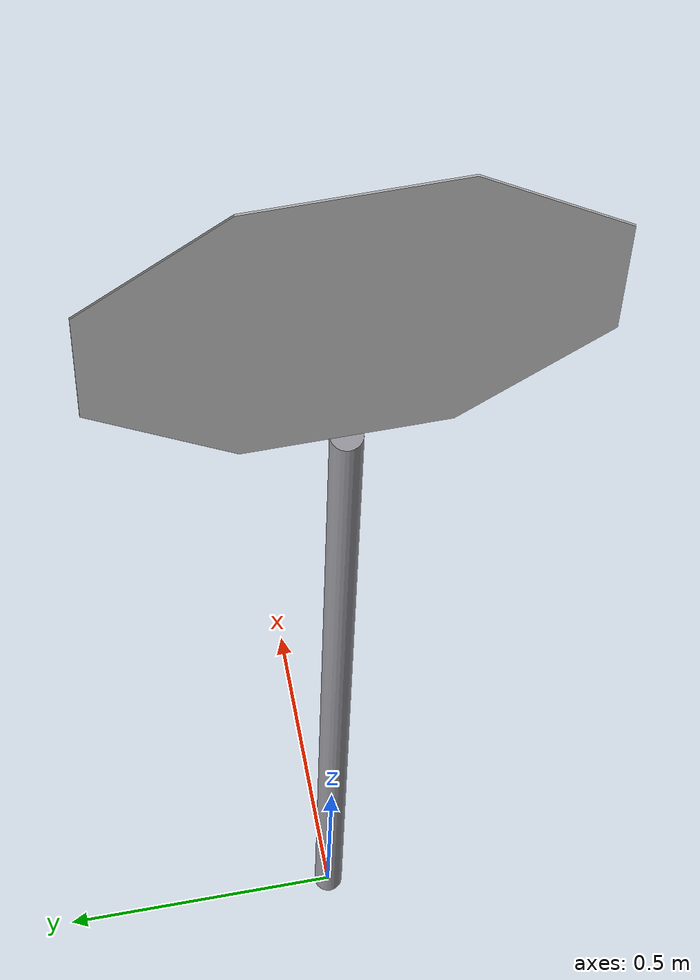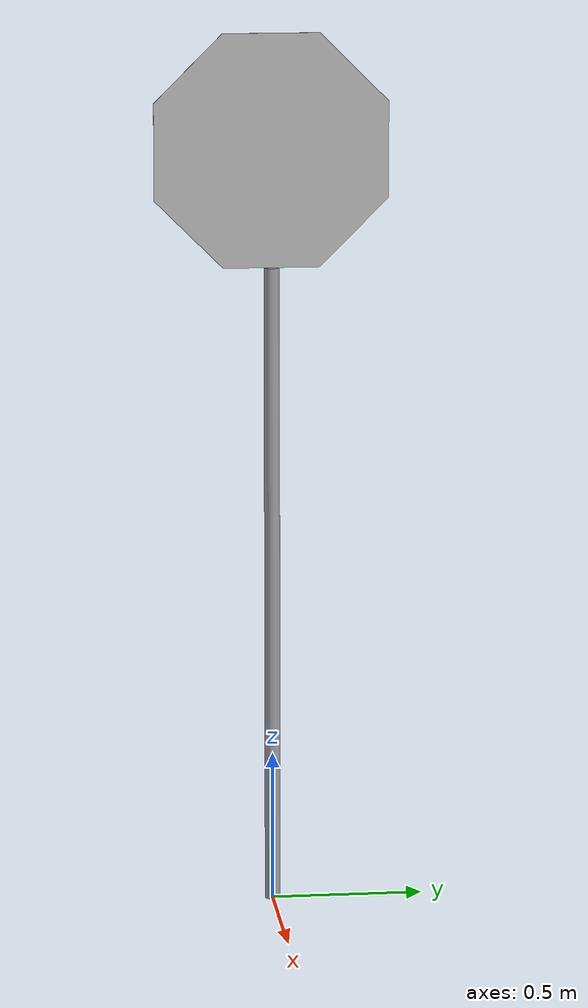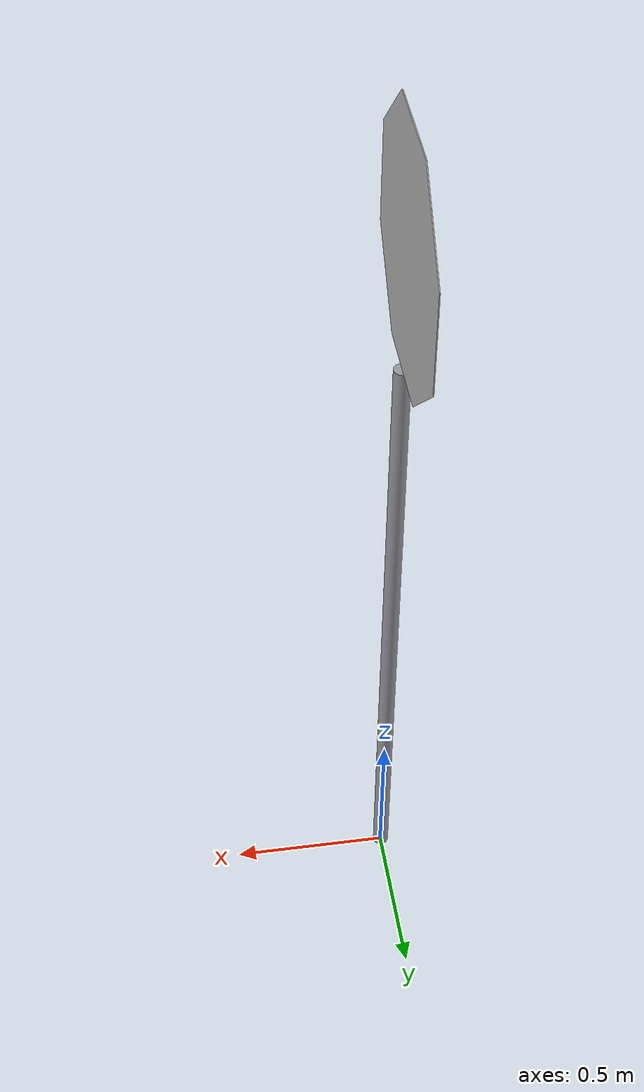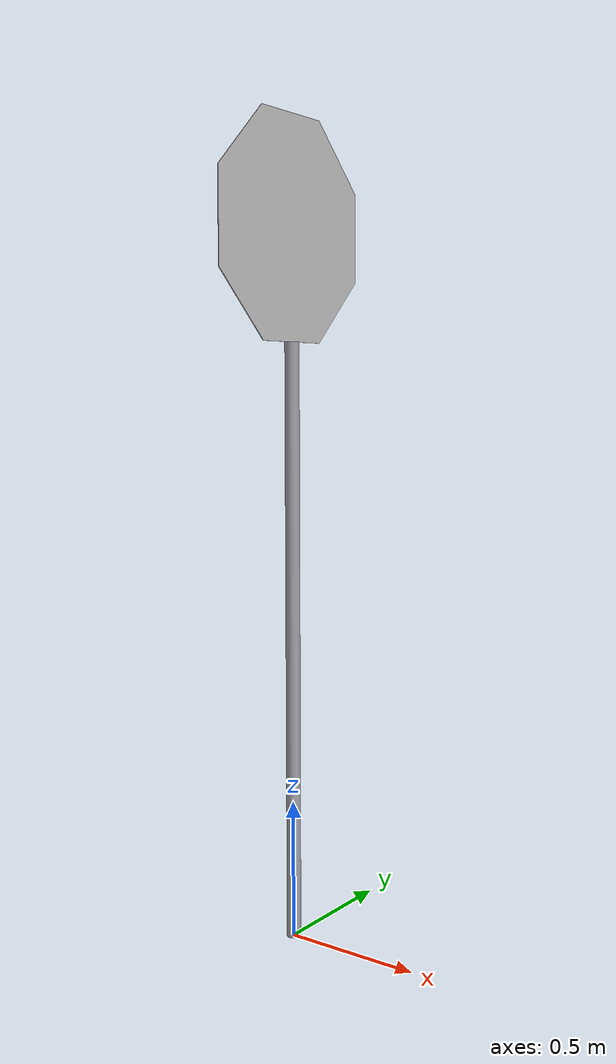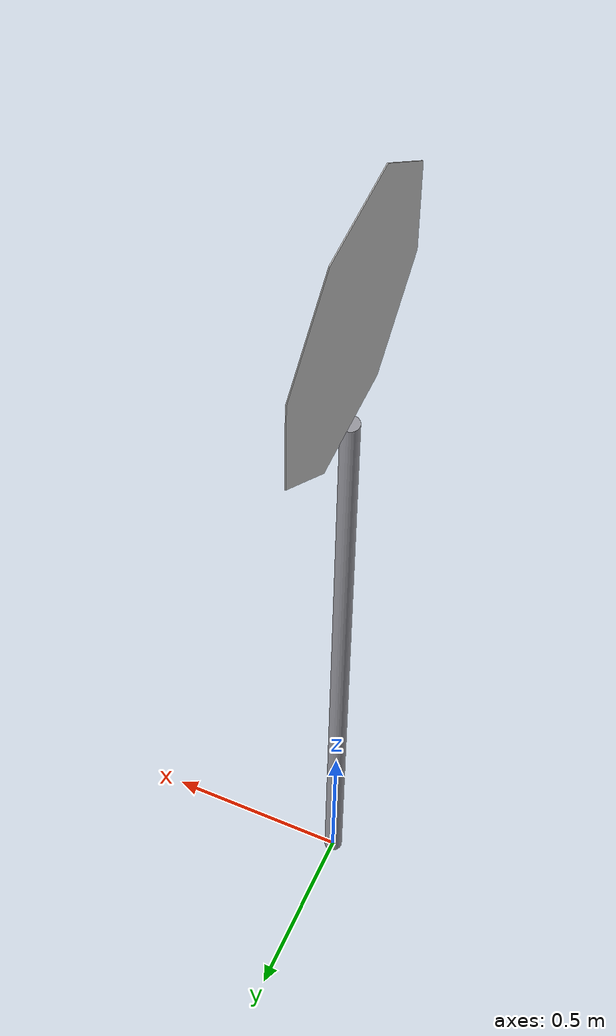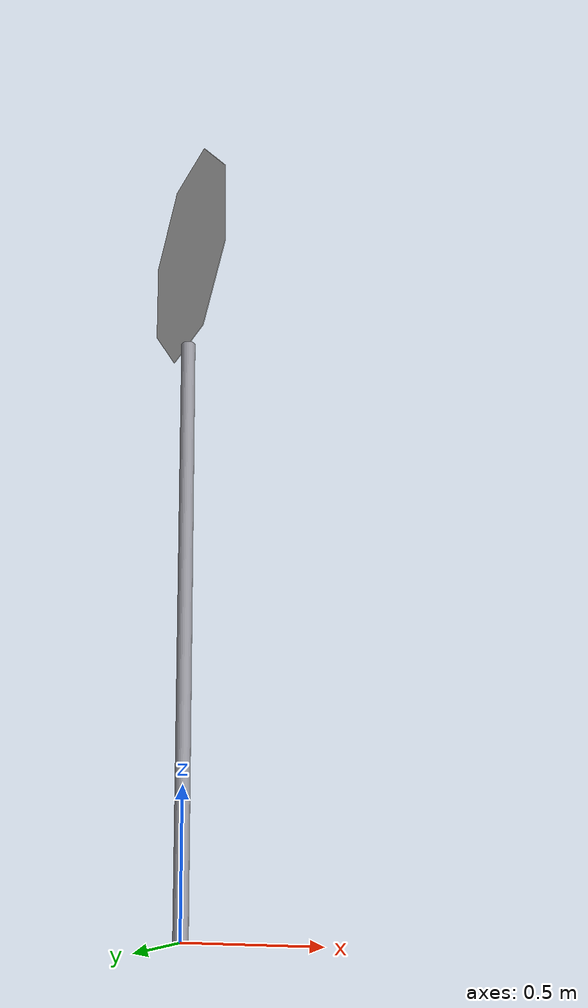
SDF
<?xml version='1.0'?>
<sdf version='1.11'>
  <model name='stop_sign'>
    <pose>0 0 0 0 0 0</pose>
    <static>1</static>

    <link name='base'>

      <!-- Sign panel -->
      <visual name='sign_panel'>
        <!-- Mesh origin is at sign center; elevate to 7 ft pole height + apothem (half flat-to-flat) -->
        <pose>0 0 2.515 0 0 0</pose>
        <geometry>
          <mesh>
            <uri>package://ece5532_gazebo/models/stop_sign/meshes/stop_sign.obj</uri>
            <scale>1 1 1</scale>
          </mesh>
        </geometry>
      </visual>

      <!-- Support post: 2-inch diameter galvanized steel pipe, 7 ft (2.134 m) tall -->
      <visual name='pole'>
        <pose>0 0 1.067 0 0 0</pose>
        <geometry>
          <cylinder>
            <radius>0.0254</radius>
            <length>2.134</length>
          </cylinder>
        </geometry>
        <material>
          <ambient>0.5 0.5 0.52 1</ambient>
          <diffuse>0.6 0.6 0.63 1</diffuse>
          <specular>0.4 0.4 0.4 1</specular>
        </material>
      </visual>

      <!-- Sign collision: box bounding the octagon panel -->
      <!-- Octagon flat-to-flat = 0.762 m (30 in); depth = 0.003 m -->
      <collision name='sign_col'>
        <pose>0 0 2.515 0 0 0</pose>
        <geometry>
          <box>
            <size>0.003 0.762 0.762</size>
          </box>
        </geometry>
      </collision>

      <!-- Pole collision -->
      <collision name='pole_col'>
        <pose>0 0 1.067 0 0 0</pose>
        <geometry>
          <cylinder>
            <radius>0.0254</radius>
            <length>2.134</length>
          </cylinder>
        </geometry>
      </collision>

    </link>
  </model>
</sdf>
